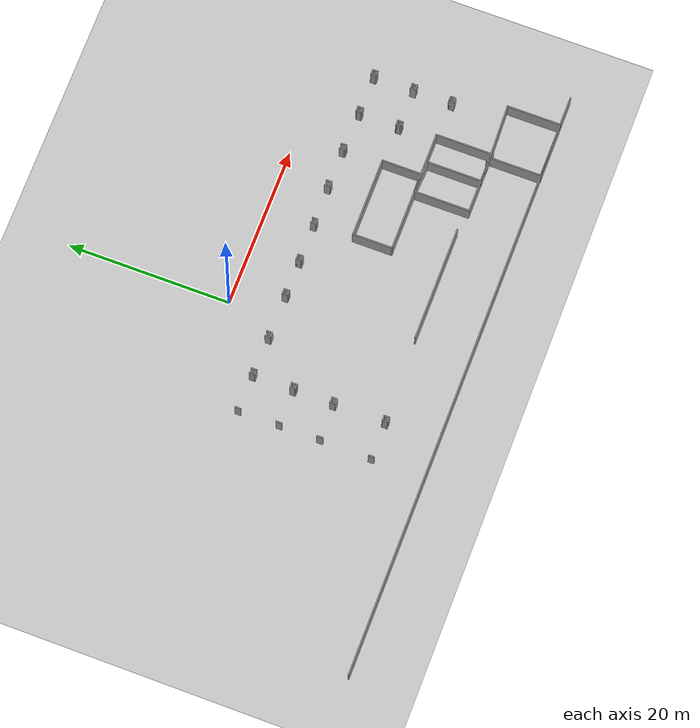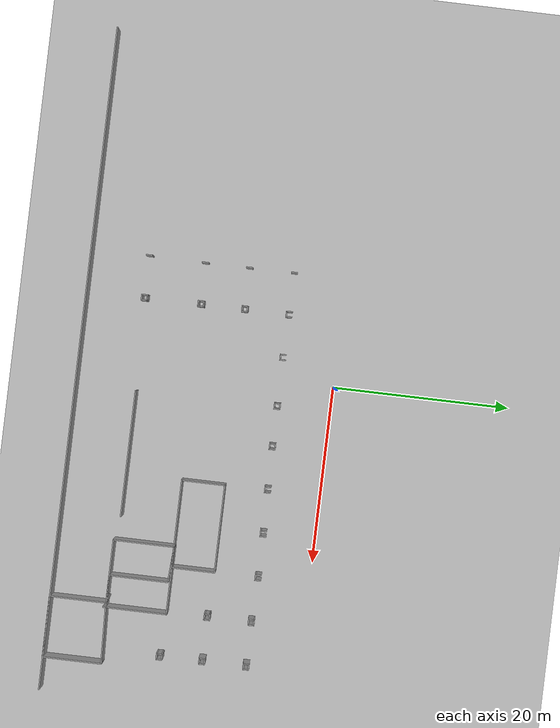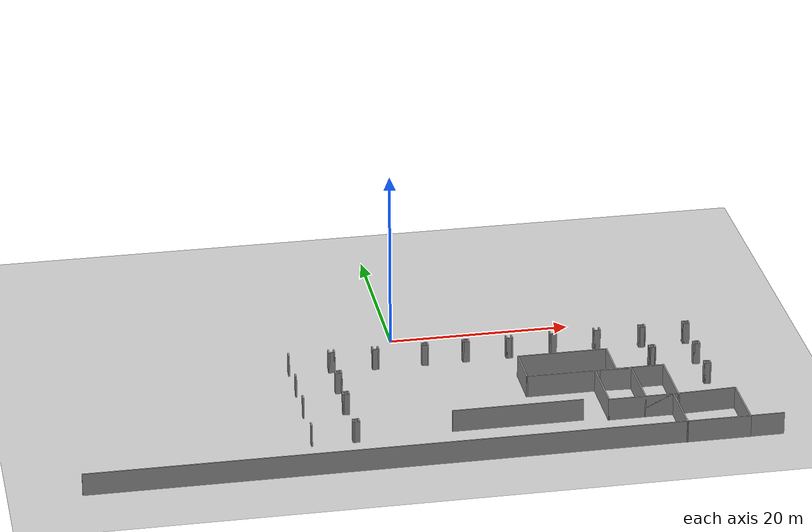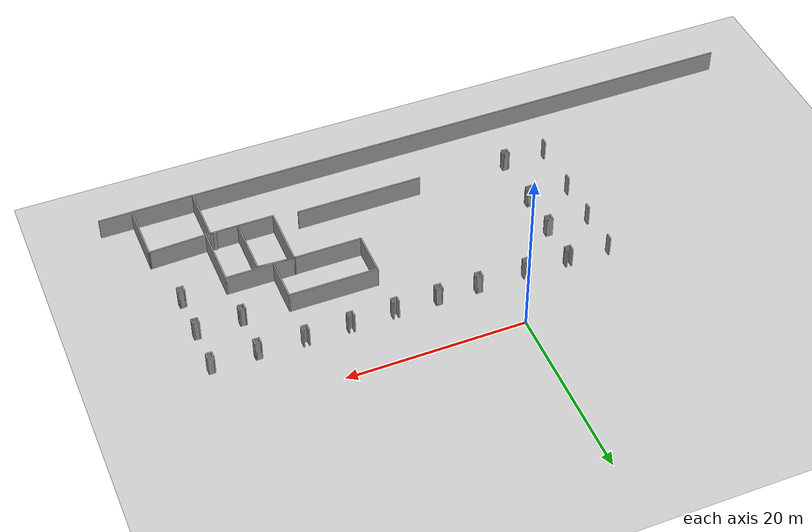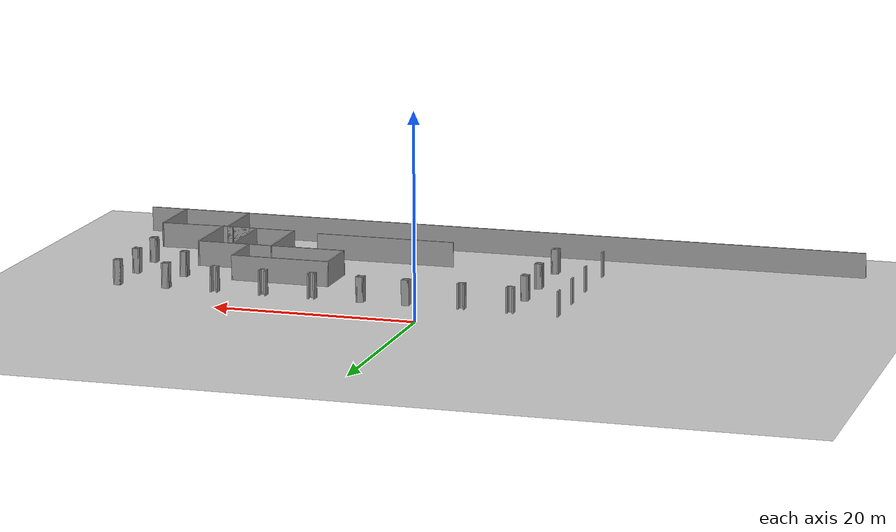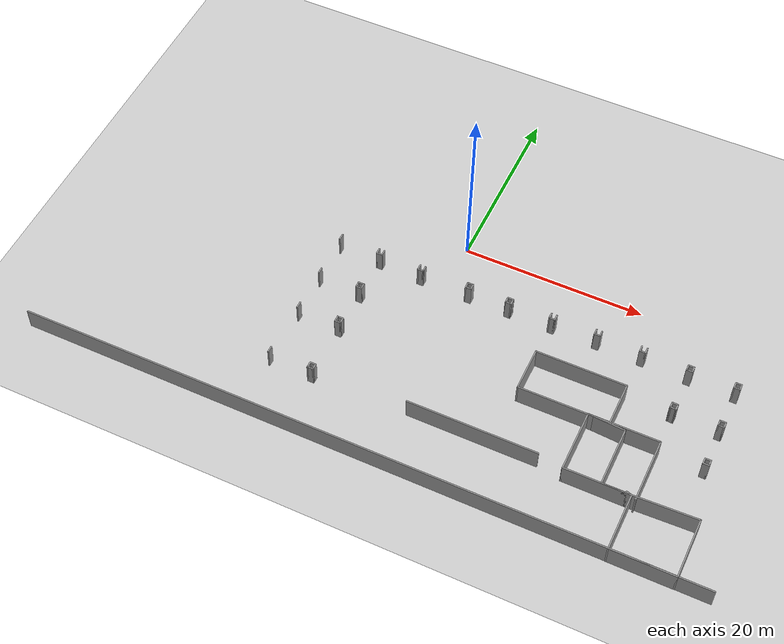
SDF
<sdf version="1.6">
 <world name="default">
  <model name="ground_plane">
   <static>1</static>
   <link name="link">
    <collision name="collision">
     <geometry><plane><normal>0 0 1</normal><size>100 100</size></plane></geometry>
     <surface>
      <contact><collide_bitmask>65535</collide_bitmask></contact>
      <friction><ode><mu>100</mu><mu2>50</mu2></ode></friction>
     </surface>
    </collision>
    <visual name="visual">
     <cast_shadows>0</cast_shadows>
     <geometry><plane><normal>0 0 1</normal><size>100 100</size></plane></geometry>
     <material>
      <script><uri>file://media/materials/scripts/gazebo.material</uri><name>Gazebo/Grey</name></script>
     </material>
    </visual>
   </link>
  </model>
  <model name="parking_area_big">
   <pose>0.030669 -0.012869 0 0 -0 0</pose>
   <link name="Wall_110">
    <collision name="Wall_110_Collision">
     <geometry><box><size>0.75 0.15 2.5</size></box></geometry>
     <pose>0 0 1.25 0 -0 0</pose>
    </collision>
    <visual name="Wall_110_Visual">
     <pose>0 0 1.25 0 -0 0</pose>
     <geometry><box><size>0.75 0.15 2.5</size></box></geometry>
     <material>
      <script><uri>file://media/materials/scripts/gazebo.material</uri><name>Gazebo/Grey</name></script>
      <ambient>1 1 1 1</ambient>
     </material>
     <meta><layer>0</layer></meta>
    </visual>
    <pose>27.1351 -5.75905 0 0 -0 0</pose>
   </link>
   <link name="Wall_111">
    <collision name="Wall_111_Collision">
     <geometry><box><size>0.75 0.15 2.5</size></box></geometry>
     <pose>0 0 1.25 0 -0 0</pose>
    </collision>
    <visual name="Wall_111_Visual">
     <pose>0 0 1.25 0 -0 0</pose>
     <geometry><box><size>0.75 0.15 2.5</size></box></geometry>
     <material>
      <script><uri>file://media/materials/scripts/gazebo.material</uri><name>Gazebo/Grey</name></script>
      <ambient>1 1 1 1</ambient>
     </material>
     <meta><layer>0</layer></meta>
    </visual>
    <pose>27.4351 -6.05905 0 0 -0 -1.5708</pose>
   </link>
   <link name="Wall_112">
    <collision name="Wall_112_Collision">
     <geometry><box><size>0.75 0.15 2.5</size></box></geometry>
     <pose>0 0 1.25 0 -0 0</pose>
    </collision>
    <visual name="Wall_112_Visual">
     <pose>0 0 1.25 0 -0 0</pose>
     <geometry><box><size>0.75 0.15 2.5</size></box></geometry>
     <material>
      <script><uri>file://media/materials/scripts/gazebo.material</uri><name>Gazebo/Grey</name></script>
      <ambient>1 1 1 1</ambient>
     </material>
     <meta><layer>0</layer></meta>
    </visual>
    <pose>27.1351 -6.35905 0 0 -0 3.14159</pose>
   </link>
   <link name="Wall_113">
    <collision name="Wall_113_Collision">
     <geometry><box><size>0.75 0.15 2.5</size></box></geometry>
     <pose>0 0 1.25 0 -0 0</pose>
    </collision>
    <visual name="Wall_113_Visual">
     <pose>0 0 1.25 0 -0 0</pose>
     <geometry><box><size>0.75 0.15 2.5</size></box></geometry>
     <material>
      <script><uri>file://media/materials/scripts/gazebo.material</uri><name>Gazebo/Grey</name></script>
      <ambient>1 1 1 1</ambient>
     </material>
     <meta><layer>0</layer></meta>
    </visual>
    <pose>26.8351 -6.05905 0 0 -0 1.5708</pose>
   </link>
   <link name="Wall_115">
    <collision name="Wall_115_Collision">
     <geometry><box><size>0.75 0.15 2.5</size></box></geometry>
     <pose>0 0 1.25 0 -0 0</pose>
    </collision>
    <visual name="Wall_115_Visual">
     <pose>0 0 1.25 0 -0 0</pose>
     <geometry><box><size>0.75 0.15 2.5</size></box></geometry>
     <material>
      <script><uri>file://media/materials/scripts/gazebo.material</uri><name>Gazebo/Grey</name></script>
      <ambient>1 1 1 1</ambient>
     </material>
     <meta><layer>0</layer></meta>
    </visual>
    <pose>32.1351 -5.75905 0 0 -0 0</pose>
   </link>
   <link name="Wall_116">
    <collision name="Wall_116_Collision">
     <geometry><box><size>0.75 0.15 2.5</size></box></geometry>
     <pose>0 0 1.25 0 -0 0</pose>
    </collision>
    <visual name="Wall_116_Visual">
     <pose>0 0 1.25 0 -0 0</pose>
     <geometry><box><size>0.75 0.15 2.5</size></box></geometry>
     <material>
      <script><uri>file://media/materials/scripts/gazebo.material</uri><name>Gazebo/Grey</name></script>
      <ambient>1 1 1 1</ambient>
     </material>
     <meta><layer>0</layer></meta>
    </visual>
    <pose>32.4351 -6.05905 0 0 -0 -1.5708</pose>
   </link>
   <link name="Wall_117">
    <collision name="Wall_117_Collision">
     <geometry><box><size>0.75 0.15 2.5</size></box></geometry>
     <pose>0 0 1.25 0 -0 0</pose>
    </collision>
    <visual name="Wall_117_Visual">
     <pose>0 0 1.25 0 -0 0</pose>
     <geometry><box><size>0.75 0.15 2.5</size></box></geometry>
     <material>
      <script><uri>file://media/materials/scripts/gazebo.material</uri><name>Gazebo/Grey</name></script>
      <ambient>1 1 1 1</ambient>
     </material>
     <meta><layer>0</layer></meta>
    </visual>
    <pose>32.1351 -6.35905 0 0 -0 3.14159</pose>
   </link>
   <link name="Wall_118">
    <collision name="Wall_118_Collision">
     <geometry><box><size>0.75 0.15 2.5</size></box></geometry>
     <pose>0 0 1.25 0 -0 0</pose>
    </collision>
    <visual name="Wall_118_Visual">
     <pose>0 0 1.25 0 -0 0</pose>
     <geometry><box><size>0.75 0.15 2.5</size></box></geometry>
     <material>
      <script><uri>file://media/materials/scripts/gazebo.material</uri><name>Gazebo/Grey</name></script>
      <ambient>1 1 1 1</ambient>
     </material>
     <meta><layer>0</layer></meta>
    </visual>
    <pose>31.8351 -6.05905 0 0 -0 1.5708</pose>
   </link>
   <link name="Wall_120">
    <collision name="Wall_120_Collision">
     <geometry><box><size>0.75 0.15 2.5</size></box></geometry>
     <pose>0 0 1.25 0 -0 0</pose>
    </collision>
    <visual name="Wall_120_Visual">
     <pose>0 0 1.25 0 -0 0</pose>
     <geometry><box><size>0.75 0.15 2.5</size></box></geometry>
     <material>
      <script><uri>file://media/materials/scripts/gazebo.material</uri><name>Gazebo/Grey</name></script>
      <ambient>1 1 1 1</ambient>
     </material>
     <meta><layer>0</layer></meta>
    </visual>
    <pose>27.1351 -10.7591 0 0 -0 0</pose>
   </link>
   <link name="Wall_121">
    <collision name="Wall_121_Collision">
     <geometry><box><size>0.75 0.15 2.5</size></box></geometry>
     <pose>0 0 1.25 0 -0 0</pose>
    </collision>
    <visual name="Wall_121_Visual">
     <pose>0 0 1.25 0 -0 0</pose>
     <geometry><box><size>0.75 0.15 2.5</size></box></geometry>
     <material>
      <script><uri>file://media/materials/scripts/gazebo.material</uri><name>Gazebo/Grey</name></script>
      <ambient>1 1 1 1</ambient>
     </material>
     <meta><layer>0</layer></meta>
    </visual>
    <pose>27.4351 -11.0591 0 0 -0 -1.5708</pose>
   </link>
   <link name="Wall_122">
    <collision name="Wall_122_Collision">
     <geometry><box><size>0.640408 0.15 2.5</size></box></geometry>
     <pose>0 0 1.25 0 -0 0</pose>
    </collision>
    <visual name="Wall_122_Visual">
     <pose>0 0 1.25 0 -0 0</pose>
     <geometry><box><size>0.640408 0.15 2.5</size></box></geometry>
     <material>
      <script><uri>file://media/materials/scripts/gazebo.material</uri><name>Gazebo/Grey</name></script>
      <ambient>1 1 1 1</ambient>
     </material>
     <meta><layer>0</layer></meta>
    </visual>
    <pose>27.19 -11.3491 0 0 -0 3.1008</pose>
   </link>
   <link name="Wall_123">
    <collision name="Wall_123_Collision">
     <geometry><box><size>0.25 0.15 2.5</size></box></geometry>
     <pose>0 0 1.25 0 -0 0</pose>
    </collision>
    <visual name="Wall_123_Visual">
     <pose>0 0 1.25 0 -0 0</pose>
     <geometry><box><size>0.25 0.15 2.5</size></box></geometry>
     <material>
      <script><uri>file://media/materials/scripts/gazebo.material</uri><name>Gazebo/Grey</name></script>
      <ambient>1 1 1 1</ambient>
     </material>
     <meta><layer>0</layer></meta>
    </visual>
    <pose>26.8751 -11.3391 0 0 -0 3.14159</pose>
   </link>
   <link name="Wall_124">
    <collision name="Wall_124_Collision">
     <geometry><box><size>0.15 0.15 2.5</size></box></geometry>
     <pose>0 0 1.25 0 -0 0</pose>
    </collision>
    <visual name="Wall_124_Visual">
     <pose>0 0 1.25 0 -0 0</pose>
     <geometry><box><size>0.15 0.15 2.5</size></box></geometry>
     <material>
      <script><uri>file://media/materials/scripts/gazebo.material</uri><name>Gazebo/Grey</name></script>
      <ambient>1 1 1 1</ambient>
     </material>
     <meta><layer>0</layer></meta>
    </visual>
    <pose>26.8451 -11.3391 0 0 -0 0</pose>
   </link>
   <link name="Wall_126">
    <collision name="Wall_126_Collision">
     <geometry><box><size>0.730086 0.15 2.5</size></box></geometry>
     <pose>0 0 1.25 0 -0 0</pose>
    </collision>
    <visual name="Wall_126_Visual">
     <pose>0 0 1.25 0 -0 0</pose>
     <geometry><box><size>0.730086 0.15 2.5</size></box></geometry>
     <material>
      <script><uri>file://media/materials/scripts/gazebo.material</uri><name>Gazebo/Grey</name></script>
      <ambient>1 1 1 1</ambient>
     </material>
     <meta><layer>0</layer></meta>
    </visual>
    <pose>26.8401 -11.0491 0 0 -0 -1.55356</pose>
   </link>
   <link name="Wall_128">
    <collision name="Wall_128_Collision">
     <geometry><box><size>0.75 0.15 2.5</size></box></geometry>
     <pose>0 0 1.25 0 -0 0</pose>
    </collision>
    <visual name="Wall_128_Visual">
     <pose>0 0 1.25 0 -0 0</pose>
     <geometry><box><size>0.75 0.15 2.5</size></box></geometry>
     <material>
      <script><uri>file://media/materials/scripts/gazebo.material</uri><name>Gazebo/Grey</name></script>
      <ambient>1 1 1 1</ambient>
     </material>
     <meta><layer>0</layer></meta>
    </visual>
    <pose>32.1151 -10.7391 0 0 -0 0</pose>
   </link>
   <link name="Wall_129">
    <collision name="Wall_129_Collision">
     <geometry><box><size>0.75 0.15 2.5</size></box></geometry>
     <pose>0 0 1.25 0 -0 0</pose>
    </collision>
    <visual name="Wall_129_Visual">
     <pose>0 0 1.25 0 -0 0</pose>
     <geometry><box><size>0.75 0.15 2.5</size></box></geometry>
     <material>
      <script><uri>file://media/materials/scripts/gazebo.material</uri><name>Gazebo/Grey</name></script>
      <ambient>1 1 1 1</ambient>
     </material>
     <meta><layer>0</layer></meta>
    </visual>
    <pose>32.4151 -11.0391 0 0 -0 -1.5708</pose>
   </link>
   <link name="Wall_130">
    <collision name="Wall_130_Collision">
     <geometry><box><size>0.75 0.15 2.5</size></box></geometry>
     <pose>0 0 1.25 0 -0 0</pose>
    </collision>
    <visual name="Wall_130_Visual">
     <pose>0 0 1.25 0 -0 0</pose>
     <geometry><box><size>0.75 0.15 2.5</size></box></geometry>
     <material>
      <script><uri>file://media/materials/scripts/gazebo.material</uri><name>Gazebo/Grey</name></script>
      <ambient>1 1 1 1</ambient>
     </material>
     <meta><layer>0</layer></meta>
    </visual>
    <pose>32.1151 -11.3391 0 0 -0 3.14159</pose>
   </link>
   <link name="Wall_131">
    <collision name="Wall_131_Collision">
     <geometry><box><size>0.75 0.15 2.5</size></box></geometry>
     <pose>0 0 1.25 0 -0 0</pose>
    </collision>
    <visual name="Wall_131_Visual">
     <pose>0 0 1.25 0 -0 0</pose>
     <geometry><box><size>0.75 0.15 2.5</size></box></geometry>
     <material>
      <script><uri>file://media/materials/scripts/gazebo.material</uri><name>Gazebo/Grey</name></script>
      <ambient>1 1 1 1</ambient>
     </material>
     <meta><layer>0</layer></meta>
    </visual>
    <pose>31.815 -11.0391 0 0 -0 1.5708</pose>
   </link>
   <link name="Wall_134">
    <collision name="Wall_134_Collision">
     <geometry><box><size>0.75 0.15 2.5</size></box></geometry>
     <pose>0 0 1.25 0 -0 0</pose>
    </collision>
    <visual name="Wall_134_Visual">
     <pose>0 0 1.25 0 -0 0</pose>
     <geometry><box><size>0.75 0.15 2.5</size></box></geometry>
     <material>
      <script><uri>file://media/materials/scripts/gazebo.material</uri><name>Gazebo/Grey</name></script>
      <ambient>1 1 1 1</ambient>
     </material>
     <meta><layer>0</layer></meta>
    </visual>
    <pose>32.1751 -15.5391 0 0 -0 0</pose>
   </link>
   <link name="Wall_135">
    <collision name="Wall_135_Collision">
     <geometry><box><size>0.75 0.15 2.5</size></box></geometry>
     <pose>0 0 1.25 0 -0 0</pose>
    </collision>
    <visual name="Wall_135_Visual">
     <pose>0 0 1.25 0 -0 0</pose>
     <geometry><box><size>0.75 0.15 2.5</size></box></geometry>
     <material>
      <script><uri>file://media/materials/scripts/gazebo.material</uri><name>Gazebo/Grey</name></script>
      <ambient>1 1 1 1</ambient>
     </material>
     <meta><layer>0</layer></meta>
    </visual>
    <pose>32.4751 -15.8391 0 0 -0 -1.5708</pose>
   </link>
   <link name="Wall_136">
    <collision name="Wall_136_Collision">
     <geometry><box><size>0.75 0.15 2.5</size></box></geometry>
     <pose>0 0 1.25 0 -0 0</pose>
    </collision>
    <visual name="Wall_136_Visual">
     <pose>0 0 1.25 0 -0 0</pose>
     <geometry><box><size>0.75 0.15 2.5</size></box></geometry>
     <material>
      <script><uri>file://media/materials/scripts/gazebo.material</uri><name>Gazebo/Grey</name></script>
      <ambient>1 1 1 1</ambient>
     </material>
     <meta><layer>0</layer></meta>
    </visual>
    <pose>32.1751 -16.1391 0 0 -0 3.14159</pose>
   </link>
   <link name="Wall_137">
    <collision name="Wall_137_Collision">
     <geometry><box><size>0.75 0.15 2.5</size></box></geometry>
     <pose>0 0 1.25 0 -0 0</pose>
    </collision>
    <visual name="Wall_137_Visual">
     <pose>0 0 1.25 0 -0 0</pose>
     <geometry><box><size>0.75 0.15 2.5</size></box></geometry>
     <material>
      <script><uri>file://media/materials/scripts/gazebo.material</uri><name>Gazebo/Grey</name></script>
      <ambient>1 1 1 1</ambient>
     </material>
     <meta><layer>0</layer></meta>
    </visual>
    <pose>31.8751 -15.8391 0 0 -0 1.5708</pose>
   </link>
   <link name="Wall_139">
    <collision name="Wall_139_Collision">
     <geometry><box><size>10 0.15 2.5</size></box></geometry>
     <pose>0 0 1.25 0 -0 0</pose>
    </collision>
    <visual name="Wall_139_Visual">
     <pose>0 0 1.25 0 -0 0</pose>
     <geometry><box><size>10 0.15 2.5</size></box></geometry>
     <material>
      <script><uri>file://media/materials/scripts/gazebo.material</uri><name>Gazebo/Grey</name></script>
      <ambient>1 1 1 1</ambient>
     </material>
     <meta><layer>0</layer></meta>
    </visual>
    <pose>17.1385 -10.7965 0 0 -0 0</pose>
   </link>
   <link name="Wall_140">
    <collision name="Wall_140_Collision">
     <geometry><box><size>5 0.15 2.5</size></box></geometry>
     <pose>0 0 1.25 0 -0 0</pose>
    </collision>
    <visual name="Wall_140_Visual">
     <pose>0 0 1.25 0 -0 0</pose>
     <geometry><box><size>5 0.15 2.5</size></box></geometry>
     <material>
      <script><uri>file://media/materials/scripts/gazebo.material</uri><name>Gazebo/Grey</name></script>
      <ambient>1 1 1 1</ambient>
     </material>
     <meta><layer>0</layer></meta>
    </visual>
    <pose>22.0635 -13.2215 0 0 -0 -1.5708</pose>
   </link>
   <link name="Wall_141">
    <collision name="Wall_141_Collision">
     <geometry><box><size>10 0.15 2.5</size></box></geometry>
     <pose>0 0 1.25 0 -0 0</pose>
    </collision>
    <visual name="Wall_141_Visual">
     <pose>0 0 1.25 0 -0 0</pose>
     <geometry><box><size>10 0.15 2.5</size></box></geometry>
     <material>
      <script><uri>file://media/materials/scripts/gazebo.material</uri><name>Gazebo/Grey</name></script>
      <ambient>1 1 1 1</ambient>
     </material>
     <meta><layer>0</layer></meta>
    </visual>
    <pose>17.1385 -15.6465 0 0 -0 3.14159</pose>
   </link>
   <link name="Wall_142">
    <collision name="Wall_142_Collision">
     <geometry><box><size>5 0.15 2.5</size></box></geometry>
     <pose>0 0 1.25 0 -0 0</pose>
    </collision>
    <visual name="Wall_142_Visual">
     <pose>0 0 1.25 0 -0 0</pose>
     <geometry><box><size>5 0.15 2.5</size></box></geometry>
     <material>
      <script><uri>file://media/materials/scripts/gazebo.material</uri><name>Gazebo/Grey</name></script>
      <ambient>1 1 1 1</ambient>
     </material>
     <meta><layer>0</layer></meta>
    </visual>
    <pose>12.2135 -13.2215 0 0 -0 1.5708</pose>
   </link>
   <link name="Wall_144">
    <collision name="Wall_144_Collision">
     <geometry><box><size>0.75 0.15 2.5</size></box></geometry>
     <pose>0 0 1.25 0 -0 0</pose>
    </collision>
    <visual name="Wall_144_Visual">
     <pose>0 0 1.25 0 -0 0</pose>
     <geometry><box><size>0.75 0.15 2.5</size></box></geometry>
     <material>
      <script><uri>file://media/materials/scripts/gazebo.material</uri><name>Gazebo/Grey</name></script>
      <ambient>1 1 1 1</ambient>
     </material>
     <meta><layer>0</layer></meta>
    </visual>
    <pose>2.74065 -5.725 0 0 -0 0</pose>
   </link>
   <link name="Wall_145">
    <collision name="Wall_145_Collision">
     <geometry><box><size>0.75 0.15 2.5</size></box></geometry>
     <pose>0 0 1.25 0 -0 0</pose>
    </collision>
    <visual name="Wall_145_Visual">
     <pose>0 0 1.25 0 -0 0</pose>
     <geometry><box><size>0.75 0.15 2.5</size></box></geometry>
     <material>
      <script><uri>file://media/materials/scripts/gazebo.material</uri><name>Gazebo/Grey</name></script>
      <ambient>1 1 1 1</ambient>
     </material>
     <meta><layer>0</layer></meta>
    </visual>
    <pose>3.04065 -6.025 0 0 -0 -1.5708</pose>
   </link>
   <link name="Wall_146">
    <collision name="Wall_146_Collision">
     <geometry><box><size>0.75 0.15 2.5</size></box></geometry>
     <pose>0 0 1.25 0 -0 0</pose>
    </collision>
    <visual name="Wall_146_Visual">
     <pose>0 0 1.25 0 -0 0</pose>
     <geometry><box><size>0.75 0.15 2.5</size></box></geometry>
     <material>
      <script><uri>file://media/materials/scripts/gazebo.material</uri><name>Gazebo/Grey</name></script>
      <ambient>1 1 1 1</ambient>
     </material>
     <meta><layer>0</layer></meta>
    </visual>
    <pose>2.74065 -6.325 0 0 -0 3.14159</pose>
   </link>
   <link name="Wall_147">
    <collision name="Wall_147_Collision">
     <geometry><box><size>0.75 0.15 2.5</size></box></geometry>
     <pose>0 0 1.25 0 -0 0</pose>
    </collision>
    <visual name="Wall_147_Visual">
     <pose>0 0 1.25 0 -0 0</pose>
     <geometry><box><size>0.75 0.15 2.5</size></box></geometry>
     <material>
      <script><uri>file://media/materials/scripts/gazebo.material</uri><name>Gazebo/Grey</name></script>
      <ambient>1 1 1 1</ambient>
     </material>
     <meta><layer>0</layer></meta>
    </visual>
    <pose>2.44064 -6.025 0 0 -0 1.5708</pose>
   </link>
   <link name="Wall_173">
    <collision name="Wall_173_Collision">
     <geometry><box><size>0.75 0.15 2.5</size></box></geometry>
     <pose>0 0 1.25 0 -0 0</pose>
    </collision>
    <visual name="Wall_173_Visual">
     <pose>0 0 1.25 0 -0 0</pose>
     <geometry><box><size>0.75 0.15 2.5</size></box></geometry>
     <material>
      <script><uri>file://media/materials/scripts/gazebo.material</uri><name>Gazebo/Grey</name></script>
      <ambient>1 1 1 1</ambient>
     </material>
     <meta><layer>0</layer></meta>
    </visual>
    <pose>7.29465 -5.725 0 0 -0 0</pose>
   </link>
   <link name="Wall_174">
    <collision name="Wall_174_Collision">
     <geometry><box><size>0.75 0.15 2.5</size></box></geometry>
     <pose>0 0 1.25 0 -0 0</pose>
    </collision>
    <visual name="Wall_174_Visual">
     <pose>0 0 1.25 0 -0 0</pose>
     <geometry><box><size>0.75 0.15 2.5</size></box></geometry>
     <material>
      <script><uri>file://media/materials/scripts/gazebo.material</uri><name>Gazebo/Grey</name></script>
      <ambient>1 1 1 1</ambient>
     </material>
     <meta><layer>0</layer></meta>
    </visual>
    <pose>7.59464 -6.025 0 0 -0 -1.5708</pose>
   </link>
   <link name="Wall_175">
    <collision name="Wall_175_Collision">
     <geometry><box><size>0.75 0.15 2.5</size></box></geometry>
     <pose>0 0 1.25 0 -0 0</pose>
    </collision>
    <visual name="Wall_175_Visual">
     <pose>0 0 1.25 0 -0 0</pose>
     <geometry><box><size>0.75 0.15 2.5</size></box></geometry>
     <material>
      <script><uri>file://media/materials/scripts/gazebo.material</uri><name>Gazebo/Grey</name></script>
      <ambient>1 1 1 1</ambient>
     </material>
     <meta><layer>0</layer></meta>
    </visual>
    <pose>7.29465 -6.325 0 0 -0 3.14159</pose>
   </link>
   <link name="Wall_176">
    <collision name="Wall_176_Collision">
     <geometry><box><size>0.75 0.15 2.5</size></box></geometry>
     <pose>0 0 1.25 0 -0 0</pose>
    </collision>
    <visual name="Wall_176_Visual">
     <pose>0 0 1.25 0 -0 0</pose>
     <geometry><box><size>0.75 0.15 2.5</size></box></geometry>
     <material>
      <script><uri>file://media/materials/scripts/gazebo.material</uri><name>Gazebo/Grey</name></script>
      <ambient>1 1 1 1</ambient>
     </material>
     <meta><layer>0</layer></meta>
    </visual>
    <pose>6.99465 -6.025 0 0 -0 1.5708</pose>
   </link>
   <link name="Wall_179">
    <collision name="Wall_179_Collision">
     <geometry><box><size>0.75 0.15 2.5</size></box></geometry>
     <pose>0 0 1.25 0 -0 0</pose>
    </collision>
    <visual name="Wall_179_Visual">
     <pose>0 0 1.25 0 -0 0</pose>
     <geometry><box><size>0.75 0.15 2.5</size></box></geometry>
     <material>
      <script><uri>file://media/materials/scripts/gazebo.material</uri><name>Gazebo/Grey</name></script>
      <ambient>1 1 1 1</ambient>
     </material>
     <meta><layer>0</layer></meta>
    </visual>
    <pose>12.4706 -5.979 0 0 -0 -1.5708</pose>
   </link>
   <link name="Wall_180">
    <collision name="Wall_180_Collision">
     <geometry><box><size>0.75 0.15 2.5</size></box></geometry>
     <pose>0 0 1.25 0 -0 0</pose>
    </collision>
    <visual name="Wall_180_Visual">
     <pose>0 0 1.25 0 -0 0</pose>
     <geometry><box><size>0.75 0.15 2.5</size></box></geometry>
     <material>
      <script><uri>file://media/materials/scripts/gazebo.material</uri><name>Gazebo/Grey</name></script>
      <ambient>1 1 1 1</ambient>
     </material>
     <meta><layer>0</layer></meta>
    </visual>
    <pose>12.1706 -6.279 0 0 -0 3.14159</pose>
   </link>
   <link name="Wall_181">
    <collision name="Wall_181_Collision">
     <geometry><box><size>0.75 0.15 2.5</size></box></geometry>
     <pose>0 0 1.25 0 -0 0</pose>
    </collision>
    <visual name="Wall_181_Visual">
     <pose>0 0 1.25 0 -0 0</pose>
     <geometry><box><size>0.75 0.15 2.5</size></box></geometry>
     <material>
      <script><uri>file://media/materials/scripts/gazebo.material</uri><name>Gazebo/Grey</name></script>
      <ambient>1 1 1 1</ambient>
     </material>
     <meta><layer>0</layer></meta>
    </visual>
    <pose>11.8706 -5.979 0 0 -0 1.5708</pose>
   </link>
   <link name="Wall_184">
    <collision name="Wall_184_Collision">
     <geometry><box><size>0.75 0.15 2.5</size></box></geometry>
     <pose>0 0 1.25 0 -0 0</pose>
    </collision>
    <visual name="Wall_184_Visual">
     <pose>0 0 1.25 0 -0 0</pose>
     <geometry><box><size>0.75 0.15 2.5</size></box></geometry>
     <material>
      <script><uri>file://media/materials/scripts/gazebo.material</uri><name>Gazebo/Grey</name></script>
      <ambient>1 1 1 1</ambient>
     </material>
     <meta><layer>0</layer></meta>
    </visual>
    <pose>17.4156 -5.887 0 0 -0 -1.5708</pose>
   </link>
   <link name="Wall_185">
    <collision name="Wall_185_Collision">
     <geometry><box><size>0.75 0.15 2.5</size></box></geometry>
     <pose>0 0 1.25 0 -0 0</pose>
    </collision>
    <visual name="Wall_185_Visual">
     <pose>0 0 1.25 0 -0 0</pose>
     <geometry><box><size>0.75 0.15 2.5</size></box></geometry>
     <material>
      <script><uri>file://media/materials/scripts/gazebo.material</uri><name>Gazebo/Grey</name></script>
      <ambient>1 1 1 1</ambient>
     </material>
     <meta><layer>0</layer></meta>
    </visual>
    <pose>17.1156 -6.187 0 0 -0 3.14159</pose>
   </link>
   <link name="Wall_186">
    <collision name="Wall_186_Collision">
     <geometry><box><size>0.75 0.15 2.5</size></box></geometry>
     <pose>0 0 1.25 0 -0 0</pose>
    </collision>
    <visual name="Wall_186_Visual">
     <pose>0 0 1.25 0 -0 0</pose>
     <geometry><box><size>0.75 0.15 2.5</size></box></geometry>
     <material>
      <script><uri>file://media/materials/scripts/gazebo.material</uri><name>Gazebo/Grey</name></script>
      <ambient>1 1 1 1</ambient>
     </material>
     <meta><layer>0</layer></meta>
    </visual>
    <pose>16.8156 -5.887 0 0 -0 1.5708</pose>
   </link>
   <link name="Wall_189">
    <collision name="Wall_189_Collision">
     <geometry><box><size>0.75 0.15 2.5</size></box></geometry>
     <pose>0 0 1.25 0 -0 0</pose>
    </collision>
    <visual name="Wall_189_Visual">
     <pose>0 0 1.25 0 -0 0</pose>
     <geometry><box><size>0.75 0.15 2.5</size></box></geometry>
     <material>
      <script><uri>file://media/materials/scripts/gazebo.material</uri><name>Gazebo/Grey</name></script>
      <ambient>1 1 1 1</ambient>
     </material>
     <meta><layer>0</layer></meta>
    </visual>
    <pose>22.3606 -5.887 0 0 -0 -1.5708</pose>
   </link>
   <link name="Wall_19">
    <collision name="Wall_19_Collision">
     <geometry><box><size>74.75 0.15 2.5</size></box></geometry>
     <pose>0 0 1.25 0 -0 0</pose>
    </collision>
    <visual name="Wall_19_Visual">
     <pose>0 0 1.25 0 -0 0</pose>
     <geometry><box><size>74.75 0.15 2.5</size></box></geometry>
     <material>
      <script><uri>file://media/materials/scripts/gazebo.material</uri><name>Gazebo/Grey</name></script>
      <ambient>1 1 1 1</ambient>
     </material>
     <meta><layer>0</layer></meta>
    </visual>
    <pose>0.03142 -28.7889 0 0 -0 3.14159</pose>
   </link>
   <link name="Wall_190">
    <collision name="Wall_190_Collision">
     <geometry><box><size>0.75 0.15 2.5</size></box></geometry>
     <pose>0 0 1.25 0 -0 0</pose>
    </collision>
    <visual name="Wall_190_Visual">
     <pose>0 0 1.25 0 -0 0</pose>
     <geometry><box><size>0.75 0.15 2.5</size></box></geometry>
     <material>
      <script><uri>file://media/materials/scripts/gazebo.material</uri><name>Gazebo/Grey</name></script>
      <ambient>1 1 1 1</ambient>
     </material>
     <meta><layer>0</layer></meta>
    </visual>
    <pose>22.0606 -6.187 0 0 -0 3.14159</pose>
   </link>
   <link name="Wall_191">
    <collision name="Wall_191_Collision">
     <geometry><box><size>0.75 0.15 2.5</size></box></geometry>
     <pose>0 0 1.25 0 -0 0</pose>
    </collision>
    <visual name="Wall_191_Visual">
     <pose>0 0 1.25 0 -0 0</pose>
     <geometry><box><size>0.75 0.15 2.5</size></box></geometry>
     <material>
      <script><uri>file://media/materials/scripts/gazebo.material</uri><name>Gazebo/Grey</name></script>
      <ambient>1 1 1 1</ambient>
     </material>
     <meta><layer>0</layer></meta>
    </visual>
    <pose>21.7606 -5.887 0 0 -0 1.5708</pose>
   </link>
   <link name="Wall_209">
    <collision name="Wall_209_Collision">
     <geometry><box><size>0.75 0.15 2.5</size></box></geometry>
     <pose>0 0 1.25 0 -0 0</pose>
    </collision>
    <visual name="Wall_209_Visual">
     <pose>0 0 1.25 0 -0 0</pose>
     <geometry><box><size>0.75 0.15 2.5</size></box></geometry>
     <material>
      <script><uri>file://media/materials/scripts/gazebo.material</uri><name>Gazebo/Grey</name></script>
      <ambient>1 1 1 1</ambient>
     </material>
     <meta><layer>0</layer></meta>
    </visual>
    <pose>-2.47188 -6.0202 0 0 -0 -1.5708</pose>
   </link>
   <link name="Wall_210">
    <collision name="Wall_210_Collision">
     <geometry><box><size>0.75 0.15 2.5</size></box></geometry>
     <pose>0 0 1.25 0 -0 0</pose>
    </collision>
    <visual name="Wall_210_Visual">
     <pose>0 0 1.25 0 -0 0</pose>
     <geometry><box><size>0.75 0.15 2.5</size></box></geometry>
     <material>
      <script><uri>file://media/materials/scripts/gazebo.material</uri><name>Gazebo/Grey</name></script>
      <ambient>1 1 1 1</ambient>
     </material>
     <meta><layer>0</layer></meta>
    </visual>
    <pose>-2.77188 -6.3202 0 0 -0 3.14159</pose>
   </link>
   <link name="Wall_211">
    <collision name="Wall_211_Collision">
     <geometry><box><size>0.75 0.15 2.5</size></box></geometry>
     <pose>0 0 1.25 0 -0 0</pose>
    </collision>
    <visual name="Wall_211_Visual">
     <pose>0 0 1.25 0 -0 0</pose>
     <geometry><box><size>0.75 0.15 2.5</size></box></geometry>
     <material>
      <script><uri>file://media/materials/scripts/gazebo.material</uri><name>Gazebo/Grey</name></script>
      <ambient>1 1 1 1</ambient>
     </material>
     <meta><layer>0</layer></meta>
    </visual>
    <pose>-3.07188 -6.0202 0 0 -0 1.5708</pose>
   </link>
   <link name="Wall_24">
    <collision name="Wall_24_Collision">
     <geometry><box><size>14.25 0.15 2.5</size></box></geometry>
     <pose>0 0 1.25 0 -0 0</pose>
    </collision>
    <visual name="Wall_24_Visual">
     <pose>0 0 1.25 0 -0 0</pose>
     <geometry><box><size>14.25 0.15 2.5</size></box></geometry>
     <material>
      <script><uri>file://media/materials/scripts/gazebo.material</uri><name>Gazebo/Grey</name></script>
      <ambient>1 1 1 1</ambient>
     </material>
     <meta><layer>0</layer></meta>
    </visual>
    <pose>9.95634 -21.9743 0 0 -0 0</pose>
   </link>
   <link name="Wall_26">
    <collision name="Wall_26_Collision">
     <geometry><box><size>7 0.15 2.5</size></box></geometry>
     <pose>0 0 1.25 0 -0 0</pose>
    </collision>
    <visual name="Wall_26_Visual">
     <pose>0 0 1.25 0 -0 0</pose>
     <geometry><box><size>7 0.15 2.5</size></box></geometry>
     <material>
      <script><uri>file://media/materials/scripts/gazebo.material</uri><name>Gazebo/Grey</name></script>
      <ambient>1 1 1 1</ambient>
     </material>
     <meta><layer>0</layer></meta>
    </visual>
    <pose>19.7501 -19.0361 0 0 -0 -1.5708</pose>
   </link>
   <link name="Wall_27">
    <collision name="Wall_27_Collision">
     <geometry><box><size>7.25 0.15 2.5</size></box></geometry>
     <pose>0 0 1.25 0 -0 0</pose>
    </collision>
    <visual name="Wall_27_Visual">
     <pose>0 0 1.25 0 -0 0</pose>
     <geometry><box><size>7.25 0.15 2.5</size></box></geometry>
     <material>
      <script><uri>file://media/materials/scripts/gazebo.material</uri><name>Gazebo/Grey</name></script>
      <ambient>1 1 1 1</ambient>
     </material>
     <meta><layer>0</layer></meta>
    </visual>
    <pose>23.3001 -22.4611 0 0 -0 0</pose>
   </link>
   <link name="Wall_28">
    <collision name="Wall_28_Collision">
     <geometry><box><size>6.5 0.15 2.5</size></box></geometry>
     <pose>0 0 1.25 0 -0 0</pose>
    </collision>
    <visual name="Wall_28_Visual">
     <pose>0 0 1.25 0 -0 0</pose>
     <geometry><box><size>6.5 0.15 2.5</size></box></geometry>
     <material>
      <script><uri>file://media/materials/scripts/gazebo.material</uri><name>Gazebo/Grey</name></script>
      <ambient>1 1 1 1</ambient>
     </material>
     <meta><layer>0</layer></meta>
    </visual>
    <pose>26.8501 -25.6361 0 0 -0 -1.5708</pose>
   </link>
   <link name="Wall_29">
    <collision name="Wall_29_Collision">
     <geometry><box><size>7 0.15 2.5</size></box></geometry>
     <pose>0 0 1.25 0 -0 0</pose>
    </collision>
    <visual name="Wall_29_Visual">
     <pose>0 0 1.25 0 -0 0</pose>
     <geometry><box><size>7 0.15 2.5</size></box></geometry>
     <material>
      <script><uri>file://media/materials/scripts/gazebo.material</uri><name>Gazebo/Grey</name></script>
      <ambient>1 1 1 1</ambient>
     </material>
     <meta><layer>0</layer></meta>
    </visual>
    <pose>30.2751 -28.8111 0 0 -0 0</pose>
   </link>
   <link name="Wall_30">
    <collision name="Wall_30_Collision">
     <geometry><box><size>6.75 0.15 2.5</size></box></geometry>
     <pose>0 0 1.25 0 -0 0</pose>
    </collision>
    <visual name="Wall_30_Visual">
     <pose>0 0 1.25 0 -0 0</pose>
     <geometry><box><size>6.75 0.15 2.5</size></box></geometry>
     <material>
      <script><uri>file://media/materials/scripts/gazebo.material</uri><name>Gazebo/Grey</name></script>
      <ambient>1 1 1 1</ambient>
     </material>
     <meta><layer>0</layer></meta>
    </visual>
    <pose>33.7001 -25.5111 0 0 -0 1.5708</pose>
   </link>
   <link name="Wall_31">
    <collision name="Wall_31_Collision">
     <geometry><box><size>7.00456 0.15 2.5</size></box></geometry>
     <pose>0 0 1.25 0 -0 0</pose>
    </collision>
    <visual name="Wall_31_Visual">
     <pose>0 0 1.25 0 -0 0</pose>
     <geometry><box><size>7.00456 0.15 2.5</size></box></geometry>
     <material>
      <script><uri>file://media/materials/scripts/gazebo.material</uri><name>Gazebo/Grey</name></script>
      <ambient>1 1 1 1</ambient>
     </material>
     <meta><layer>0</layer></meta>
    </visual>
    <pose>30.2751 -22.3361 0 0 -0 -3.10511</pose>
   </link>
   <link name="Wall_32">
    <collision name="Wall_32_Collision">
     <geometry><box><size>0.75 0.15 2.5</size></box></geometry>
     <pose>0 0 1.25 0 -0 0</pose>
    </collision>
    <visual name="Wall_32_Visual">
     <pose>0 0 1.25 0 -0 0</pose>
     <geometry><box><size>0.75 0.15 2.5</size></box></geometry>
     <material>
      <script><uri>file://media/materials/scripts/gazebo.material</uri><name>Gazebo/Grey</name></script>
      <ambient>1 1 1 1</ambient>
     </material>
     <meta><layer>0</layer></meta>
    </visual>
    <pose>26.5603 -22.3834 0 0 -0 2.87979</pose>
   </link>
   <link name="Wall_33">
    <collision name="Wall_33_Collision">
     <geometry><box><size>0.75 0.15 2.5</size></box></geometry>
     <pose>0 0 1.25 0 -0 0</pose>
    </collision>
    <visual name="Wall_33_Visual">
     <pose>0 0 1.25 0 -0 0</pose>
     <geometry><box><size>0.75 0.15 2.5</size></box></geometry>
     <material>
      <script><uri>file://media/materials/scripts/gazebo.material</uri><name>Gazebo/Grey</name></script>
      <ambient>1 1 1 1</ambient>
     </material>
     <meta><layer>0</layer></meta>
    </visual>
    <pose>26.5603 -22.3834 0 0 -0 -0.261799</pose>
   </link>
   <link name="Wall_34">
    <collision name="Wall_34_Collision">
     <geometry><box><size>3.25 0.15 2.5</size></box></geometry>
     <pose>0 0 1.25 0 -0 0</pose>
    </collision>
    <visual name="Wall_34_Visual">
     <pose>0 0 1.25 0 -0 0</pose>
     <geometry><box><size>3.25 0.15 2.5</size></box></geometry>
     <material>
      <script><uri>file://media/materials/scripts/gazebo.material</uri><name>Gazebo/Grey</name></script>
      <ambient>1 1 1 1</ambient>
     </material>
     <meta><layer>0</layer></meta>
    </visual>
    <pose>25.3001 -22.4611 0 0 -0 3.14159</pose>
   </link>
   <link name="Wall_35">
    <collision name="Wall_35_Collision">
     <geometry><box><size>6.75 0.15 2.5</size></box></geometry>
     <pose>0 0 1.25 0 -0 0</pose>
    </collision>
    <visual name="Wall_35_Visual">
     <pose>0 0 1.25 0 -0 0</pose>
     <geometry><box><size>6.75 0.15 2.5</size></box></geometry>
     <material>
      <script><uri>file://media/materials/scripts/gazebo.material</uri><name>Gazebo/Grey</name></script>
      <ambient>1 1 1 1</ambient>
     </material>
     <meta><layer>0</layer></meta>
    </visual>
    <pose>23.7501 -19.1611 0 0 -0 1.5708</pose>
   </link>
   <link name="Wall_36">
    <collision name="Wall_36_Collision">
     <geometry><box><size>4.1578 0.15 2.5</size></box></geometry>
     <pose>0 0 1.25 0 -0 0</pose>
    </collision>
    <visual name="Wall_36_Visual">
     <pose>0 0 1.25 0 -0 0</pose>
     <geometry><box><size>4.1578 0.15 2.5</size></box></geometry>
     <material>
      <script><uri>file://media/materials/scripts/gazebo.material</uri><name>Gazebo/Grey</name></script>
      <ambient>1 1 1 1</ambient>
     </material>
     <meta><layer>0</layer></meta>
    </visual>
    <pose>21.7501 -15.7361 0 0 -0 3.07917</pose>
   </link>
   <link name="Wall_37">
    <collision name="Wall_37_Collision">
     <geometry><box><size>7.75 0.15 2.5</size></box></geometry>
     <pose>0 0 1.25 0 -0 0</pose>
    </collision>
    <visual name="Wall_37_Visual">
     <pose>0 0 1.25 0 -0 0</pose>
     <geometry><box><size>7.75 0.15 2.5</size></box></geometry>
     <material>
      <script><uri>file://media/materials/scripts/gazebo.material</uri><name>Gazebo/Grey</name></script>
      <ambient>1 1 1 1</ambient>
     </material>
     <meta><layer>0</layer></meta>
    </visual>
    <pose>23.5501 -15.6111 0 0 -0 0</pose>
   </link>
   <link name="Wall_38">
    <collision name="Wall_38_Collision">
     <geometry><box><size>7.25 0.15 2.5</size></box></geometry>
     <pose>0 0 1.25 0 -0 0</pose>
    </collision>
    <visual name="Wall_38_Visual">
     <pose>0 0 1.25 0 -0 0</pose>
     <geometry><box><size>7.25 0.15 2.5</size></box></geometry>
     <material>
      <script><uri>file://media/materials/scripts/gazebo.material</uri><name>Gazebo/Grey</name></script>
      <ambient>1 1 1 1</ambient>
     </material>
     <meta><layer>0</layer></meta>
    </visual>
    <pose>27.3501 -19.1611 0 0 -0 -1.5708</pose>
   </link>
   <link name="Wall_435">
    <collision name="Wall_435_Collision">
     <geometry><box><size>0.75 0.15 2.5</size></box></geometry>
     <pose>0 0 1.25 0 -0 0</pose>
    </collision>
    <visual name="Wall_435_Visual">
     <pose>0 0 1.25 0 -0 0</pose>
     <geometry><box><size>0.75 0.15 2.5</size></box></geometry>
     <material>
      <script><uri>file://media/materials/scripts/gazebo.material</uri><name>Gazebo/Grey</name></script>
      <ambient>1 1 1 1</ambient>
     </material>
     <meta><layer>0</layer></meta>
    </visual>
    <pose>-12.3642 -5.8615 0 0 -0 -1.5708</pose>
   </link>
   <link name="Wall_440">
    <collision name="Wall_440_Collision">
     <geometry><box><size>0.75 0.15 2.5</size></box></geometry>
     <pose>0 0 1.25 0 -0 0</pose>
    </collision>
    <visual name="Wall_440_Visual">
     <pose>0 0 1.25 0 -0 0</pose>
     <geometry><box><size>0.75 0.15 2.5</size></box></geometry>
     <material>
      <script><uri>file://media/materials/scripts/gazebo.material</uri><name>Gazebo/Grey</name></script>
      <ambient>1 1 1 1</ambient>
     </material>
     <meta><layer>0</layer></meta>
    </visual>
    <pose>-7.33868 -5.9144 0 0 -0 -1.5708</pose>
   </link>
   <link name="Wall_441">
    <collision name="Wall_441_Collision">
     <geometry><box><size>0.75 0.15 2.5</size></box></geometry>
     <pose>0 0 1.25 0 -0 0</pose>
    </collision>
    <visual name="Wall_441_Visual">
     <pose>0 0 1.25 0 -0 0</pose>
     <geometry><box><size>0.75 0.15 2.5</size></box></geometry>
     <material>
      <script><uri>file://media/materials/scripts/gazebo.material</uri><name>Gazebo/Grey</name></script>
      <ambient>1 1 1 1</ambient>
     </material>
     <meta><layer>0</layer></meta>
    </visual>
    <pose>-7.63868 -6.2144 0 0 -0 3.14159</pose>
   </link>
   <link name="Wall_442">
    <collision name="Wall_442_Collision">
     <geometry><box><size>0.75 0.15 2.5</size></box></geometry>
     <pose>0 0 1.25 0 -0 0</pose>
    </collision>
    <visual name="Wall_442_Visual">
     <pose>0 0 1.25 0 -0 0</pose>
     <geometry><box><size>0.75 0.15 2.5</size></box></geometry>
     <material>
      <script><uri>file://media/materials/scripts/gazebo.material</uri><name>Gazebo/Grey</name></script>
      <ambient>1 1 1 1</ambient>
     </material>
     <meta><layer>0</layer></meta>
    </visual>
    <pose>-7.93868 -5.9144 0 0 -0 1.5708</pose>
   </link>
   <link name="Wall_460">
    <collision name="Wall_460_Collision">
     <geometry><box><size>0.75 0.15 2.5</size></box></geometry>
     <pose>0 0 1.25 0 -0 0</pose>
    </collision>
    <visual name="Wall_460_Visual">
     <pose>0 0 1.25 0 -0 0</pose>
     <geometry><box><size>0.75 0.15 2.5</size></box></geometry>
     <material>
      <script><uri>file://media/materials/scripts/gazebo.material</uri><name>Gazebo/Grey</name></script>
      <ambient>1 1 1 1</ambient>
     </material>
     <meta><layer>0</layer></meta>
    </visual>
    <pose>-12.3377 -10.9135 0 0 -0 -1.5708</pose>
   </link>
   <link name="Wall_464">
    <collision name="Wall_464_Collision">
     <geometry><box><size>0.75 0.15 2.5</size></box></geometry>
     <pose>0 0 1.25 0 -0 0</pose>
    </collision>
    <visual name="Wall_464_Visual">
     <pose>0 0 1.25 0 -0 0</pose>
     <geometry><box><size>0.75 0.15 2.5</size></box></geometry>
     <material>
      <script><uri>file://media/materials/scripts/gazebo.material</uri><name>Gazebo/Grey</name></script>
      <ambient>1 1 1 1</ambient>
     </material>
     <meta><layer>0</layer></meta>
    </visual>
    <pose>-7.66513 -10.6135 0 0 -0 0</pose>
   </link>
   <link name="Wall_465">
    <collision name="Wall_465_Collision">
     <geometry><box><size>0.75 0.15 2.5</size></box></geometry>
     <pose>0 0 1.25 0 -0 0</pose>
    </collision>
    <visual name="Wall_465_Visual">
     <pose>0 0 1.25 0 -0 0</pose>
     <geometry><box><size>0.75 0.15 2.5</size></box></geometry>
     <material>
      <script><uri>file://media/materials/scripts/gazebo.material</uri><name>Gazebo/Grey</name></script>
      <ambient>1 1 1 1</ambient>
     </material>
     <meta><layer>0</layer></meta>
    </visual>
    <pose>-7.36513 -10.9135 0 0 -0 -1.5708</pose>
   </link>
   <link name="Wall_466">
    <collision name="Wall_466_Collision">
     <geometry><box><size>0.75 0.15 2.5</size></box></geometry>
     <pose>0 0 1.25 0 -0 0</pose>
    </collision>
    <visual name="Wall_466_Visual">
     <pose>0 0 1.25 0 -0 0</pose>
     <geometry><box><size>0.75 0.15 2.5</size></box></geometry>
     <material>
      <script><uri>file://media/materials/scripts/gazebo.material</uri><name>Gazebo/Grey</name></script>
      <ambient>1 1 1 1</ambient>
     </material>
     <meta><layer>0</layer></meta>
    </visual>
    <pose>-7.66513 -11.2135 0 0 -0 3.14159</pose>
   </link>
   <link name="Wall_467">
    <collision name="Wall_467_Collision">
     <geometry><box><size>0.75 0.15 2.5</size></box></geometry>
     <pose>0 0 1.25 0 -0 0</pose>
    </collision>
    <visual name="Wall_467_Visual">
     <pose>0 0 1.25 0 -0 0</pose>
     <geometry><box><size>0.75 0.15 2.5</size></box></geometry>
     <material>
      <script><uri>file://media/materials/scripts/gazebo.material</uri><name>Gazebo/Grey</name></script>
      <ambient>1 1 1 1</ambient>
     </material>
     <meta><layer>0</layer></meta>
    </visual>
    <pose>-7.96513 -10.9135 0 0 -0 1.5708</pose>
   </link>
   <link name="Wall_485">
    <collision name="Wall_485_Collision">
     <geometry><box><size>0.77645 0.15 2.5</size></box></geometry>
     <pose>0 0 1.25 0 -0 0</pose>
    </collision>
    <visual name="Wall_485_Visual">
     <pose>0 0 1.25 0 -0 0</pose>
     <geometry><box><size>0.77645 0.15 2.5</size></box></geometry>
     <material>
      <script><uri>file://media/materials/scripts/gazebo.material</uri><name>Gazebo/Grey</name></script>
      <ambient>1 1 1 1</ambient>
     </material>
     <meta><layer>0</layer></meta>
    </visual>
    <pose>-12.3113 -15.9257 0 0 -0 -1.5708</pose>
   </link>
   <link name="Wall_490">
    <collision name="Wall_490_Collision">
     <geometry><box><size>0.75 0.15 2.5</size></box></geometry>
     <pose>0 0 1.25 0 -0 0</pose>
    </collision>
    <visual name="Wall_490_Visual">
     <pose>0 0 1.25 0 -0 0</pose>
     <geometry><box><size>0.75 0.15 2.5</size></box></geometry>
     <material>
      <script><uri>file://media/materials/scripts/gazebo.material</uri><name>Gazebo/Grey</name></script>
      <ambient>1 1 1 1</ambient>
     </material>
     <meta><layer>0</layer></meta>
    </visual>
    <pose>-7.66513 -15.5596 0 0 -0 0</pose>
   </link>
   <link name="Wall_491">
    <collision name="Wall_491_Collision">
     <geometry><box><size>0.75 0.15 2.5</size></box></geometry>
     <pose>0 0 1.25 0 -0 0</pose>
    </collision>
    <visual name="Wall_491_Visual">
     <pose>0 0 1.25 0 -0 0</pose>
     <geometry><box><size>0.75 0.15 2.5</size></box></geometry>
     <material>
      <script><uri>file://media/materials/scripts/gazebo.material</uri><name>Gazebo/Grey</name></script>
      <ambient>1 1 1 1</ambient>
     </material>
     <meta><layer>0</layer></meta>
    </visual>
    <pose>-7.36513 -15.8596 0 0 -0 -1.5708</pose>
   </link>
   <link name="Wall_492">
    <collision name="Wall_492_Collision">
     <geometry><box><size>0.75 0.15 2.5</size></box></geometry>
     <pose>0 0 1.25 0 -0 0</pose>
    </collision>
    <visual name="Wall_492_Visual">
     <pose>0 0 1.25 0 -0 0</pose>
     <geometry><box><size>0.75 0.15 2.5</size></box></geometry>
     <material>
      <script><uri>file://media/materials/scripts/gazebo.material</uri><name>Gazebo/Grey</name></script>
      <ambient>1 1 1 1</ambient>
     </material>
     <meta><layer>0</layer></meta>
    </visual>
    <pose>-7.66513 -16.1596 0 0 -0 3.14159</pose>
   </link>
   <link name="Wall_493">
    <collision name="Wall_493_Collision">
     <geometry><box><size>0.75 0.15 2.5</size></box></geometry>
     <pose>0 0 1.25 0 -0 0</pose>
    </collision>
    <visual name="Wall_493_Visual">
     <pose>0 0 1.25 0 -0 0</pose>
     <geometry><box><size>0.75 0.15 2.5</size></box></geometry>
     <material>
      <script><uri>file://media/materials/scripts/gazebo.material</uri><name>Gazebo/Grey</name></script>
      <ambient>1 1 1 1</ambient>
     </material>
     <meta><layer>0</layer></meta>
    </visual>
    <pose>-7.96513 -15.8596 0 0 -0 1.5708</pose>
   </link>
   <link name="Wall_513">
    <collision name="Wall_513_Collision">
     <geometry><box><size>0.75 0.15 2.5</size></box></geometry>
     <pose>0 0 1.25 0 -0 0</pose>
    </collision>
    <visual name="Wall_513_Visual">
     <pose>0 0 1.25 0 -0 0</pose>
     <geometry><box><size>0.75 0.15 2.5</size></box></geometry>
     <material>
      <script><uri>file://media/materials/scripts/gazebo.material</uri><name>Gazebo/Grey</name></script>
      <ambient>1 1 1 1</ambient>
     </material>
     <meta><layer>0</layer></meta>
    </visual>
    <pose>-12.3906 -22.2341 0 0 -0 -1.5708</pose>
   </link>
   <link name="Wall_517">
    <collision name="Wall_517_Collision">
     <geometry><box><size>0.75 0.15 2.5</size></box></geometry>
     <pose>0 0 1.25 0 -0 0</pose>
    </collision>
    <visual name="Wall_517_Visual">
     <pose>0 0 1.25 0 -0 0</pose>
     <geometry><box><size>0.75 0.15 2.5</size></box></geometry>
     <material>
      <script><uri>file://media/materials/scripts/gazebo.material</uri><name>Gazebo/Grey</name></script>
      <ambient>1 1 1 1</ambient>
     </material>
     <meta><layer>0</layer></meta>
    </visual>
    <pose>-7.61223 -21.9341 0 0 -0 0</pose>
   </link>
   <link name="Wall_518">
    <collision name="Wall_518_Collision">
     <geometry><box><size>0.75 0.15 2.5</size></box></geometry>
     <pose>0 0 1.25 0 -0 0</pose>
    </collision>
    <visual name="Wall_518_Visual">
     <pose>0 0 1.25 0 -0 0</pose>
     <geometry><box><size>0.75 0.15 2.5</size></box></geometry>
     <material>
      <script><uri>file://media/materials/scripts/gazebo.material</uri><name>Gazebo/Grey</name></script>
      <ambient>1 1 1 1</ambient>
     </material>
     <meta><layer>0</layer></meta>
    </visual>
    <pose>-7.31223 -22.2341 0 0 -0 -1.5708</pose>
   </link>
   <link name="Wall_519">
    <collision name="Wall_519_Collision">
     <geometry><box><size>0.75 0.15 2.5</size></box></geometry>
     <pose>0 0 1.25 0 -0 0</pose>
    </collision>
    <visual name="Wall_519_Visual">
     <pose>0 0 1.25 0 -0 0</pose>
     <geometry><box><size>0.75 0.15 2.5</size></box></geometry>
     <material>
      <script><uri>file://media/materials/scripts/gazebo.material</uri><name>Gazebo/Grey</name></script>
      <ambient>1 1 1 1</ambient>
     </material>
     <meta><layer>0</layer></meta>
    </visual>
    <pose>-7.61223 -22.5341 0 0 -0 3.14159</pose>
   </link>
   <link name="Wall_520">
    <collision name="Wall_520_Collision">
     <geometry><box><size>0.75 0.15 2.5</size></box></geometry>
     <pose>0 0 1.25 0 -0 0</pose>
    </collision>
    <visual name="Wall_520_Visual">
     <pose>0 0 1.25 0 -0 0</pose>
     <geometry><box><size>0.75 0.15 2.5</size></box></geometry>
     <material>
      <script><uri>file://media/materials/scripts/gazebo.material</uri><name>Gazebo/Grey</name></script>
      <ambient>1 1 1 1</ambient>
     </material>
     <meta><layer>0</layer></meta>
    </visual>
    <pose>-7.91223 -22.2341 0 0 -0 1.5708</pose>
   </link>
   <static>1</static>
  </model>
 </world>
</sdf>
